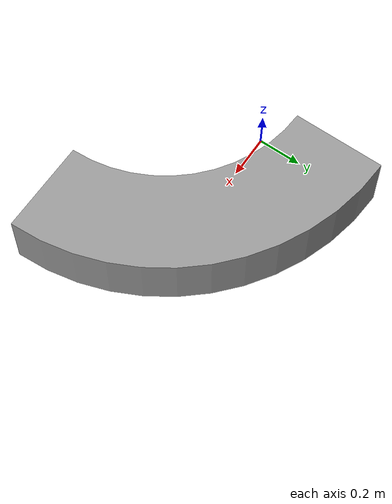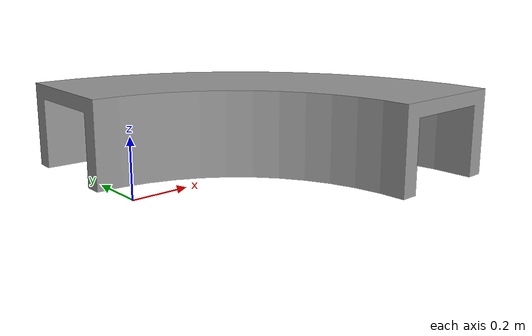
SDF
<?xml version="1.0" ?>
<sdf version="1.6">
  <model name="traffic_tunnel_3d">
    <static>true</static>
    <link name="link">
      <pose>0 0 0 0 0 3.14159</pose>
      <collision name="collision">
        <geometry>
          <mesh>
            <!-- URI dibetulkan dan nama fail ditukar kepada terowong_nxgv.stl -->
            <uri>model://traffic_tunnel_3d/meshes/terowong_nxgv.stl</uri>
            <scale>0.002 0.002 0.002</scale>
          </mesh>
        </geometry>
      </collision>
      <visual name="visual">
        <geometry>
          <mesh>
            <uri>model://traffic_tunnel_3d/meshes/terowong_nxgv.stl</uri>
            <scale>0.002 0.002 0.002</scale>
          </mesh>
        </geometry>
        <material>
          <script>
            <uri>file://media/materials/scripts/gazebo.material</uri>
            <name>Gazebo/Grey</name>
          </script>
        </material>
      </visual>
    </link>
  </model>
</sdf>
